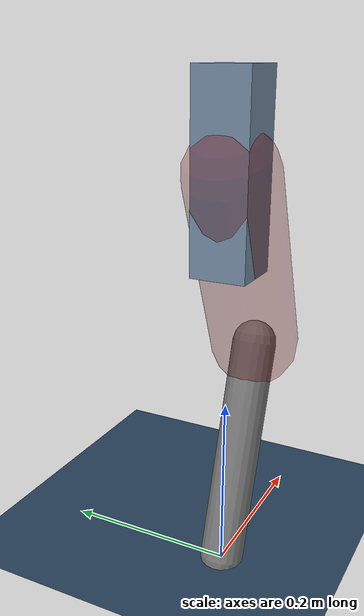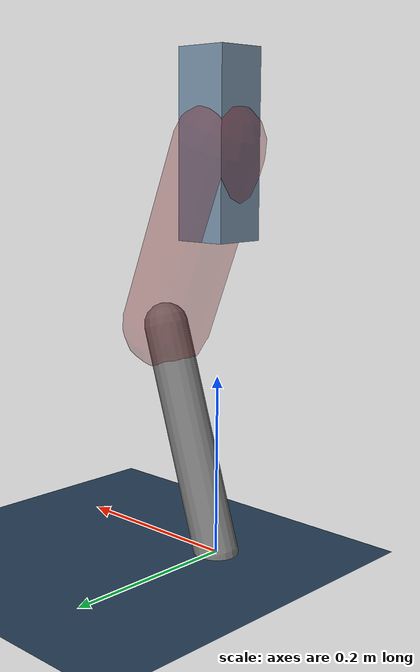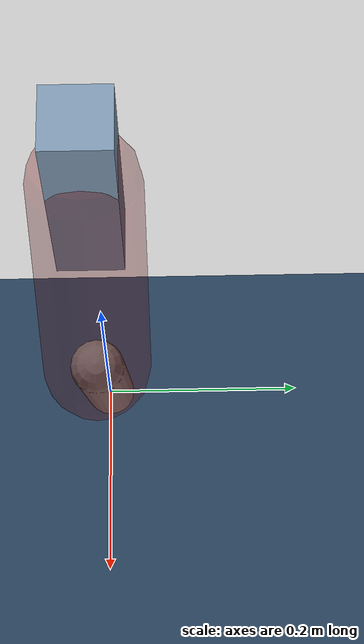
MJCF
<mujoco model="Hopper2D">
	<compiler inertiafromgeom="true" angle="radian" />
	<option timestep="0.001" integrator="implicit" cone="elliptic" solver="Newton" tolerance="1e-10" />

	<default>
		<geom contype="1" conaffinity="1" condim="3" friction="2 0.005 0.0001" solref="0.005 1" />
		<joint limited="true" damping="0.1" />
	</default>

	<asset>
		<texture name="skybox" type="skybox" builtin="gradient" rgb1=".4 .6 .8" rgb2="0 0 0" width="800" height="800" />
		<texture name="grid" type="2d" builtin="checker" rgb1=".1 .2 .3" rgb2=".2 .3 .4" width="300" height="300" mark="edge" markrgb=".2 .3 .4" />
		<material name="ground" texture="grid" texrepeat="1 1" texuniform="true" reflectance="0.1" />
		<material name="leg" rgba="0.5 0.6 0.7 1" />
	</asset>

	<worldbody>

		<geom name="floor" type="plane" size="5 5 0.25" material="ground" />

		<light directional="false" diffuse="0.8 0.8 0.8" specular="0.3 0.3 0.3" pos="0 0 2" dir="0 0 -1" />
		<light mode="targetbodycom" target="base" directional="false" diffuse="0.8 0.8 0.8" specular="0.3 0.3 0.3" pos="0 0 2" dir="0 0 -1" />

		<camera name="fixed" pos="0 -2 1" xyaxes="1 0 0 0 0 1" />
		<camera name="tracking" mode="trackcom" pos="0 -3 1" />

		<body name="root" pos="0 0 0.4482350853251687">
			<joint name="slide_x" type="slide" axis="1 0 0" range="-100 100" />
			<joint name="slide_z" type="slide" axis="0 0 1" range="0 10" />

			<body name="base" pos="0 0 0">
				<geom name="torso" type="box" size="0.03 0.03 0.1" mass="2.269" material="leg" />

				<body name="link1" pos="0 0 0" euler="0 1.1947988131640228 0">
					<joint type="hinge" axis="0 -1 0" pos="0 0 0" name="hinge1" limited="true" range="-3.14 3.14" stiffness="0" damping="0.1" />
					<geom name="thigh" type="capsule" fromto="0 0 0 0.21479564106335494 0 0" size="0.05" rgba="0.5 0 0 0.3" mass="0.7665891026583873" />

					<body name="link2" pos="0.21479564106335494 0 0" euler="0 0.6834013784238151 0">
						<joint type="hinge" axis="0 -1 0" pos="0 0 0" name="hinge2" limited="true" range="-3.14 3.14" stiffness="0" damping="0.1" />
						<geom name="shank" type="capsule" fromto="0 0 0 0.2606640019647773 0 0" size="0.025" mass="0.45129760176829953" />

					</body>
				</body>
			</body>
		</body>
	</worldbody>

	<actuator>
		<motor name="torque1" joint="hinge1" ctrlrange="-27.697059034361935 27.697059034361935" ctrllimited="true" gear="1" />
		<motor name="torque2" joint="hinge2" ctrlrange="-86.93010174585807 86.93010174585807" ctrllimited="true" gear="1" />
	</actuator>
</mujoco>
